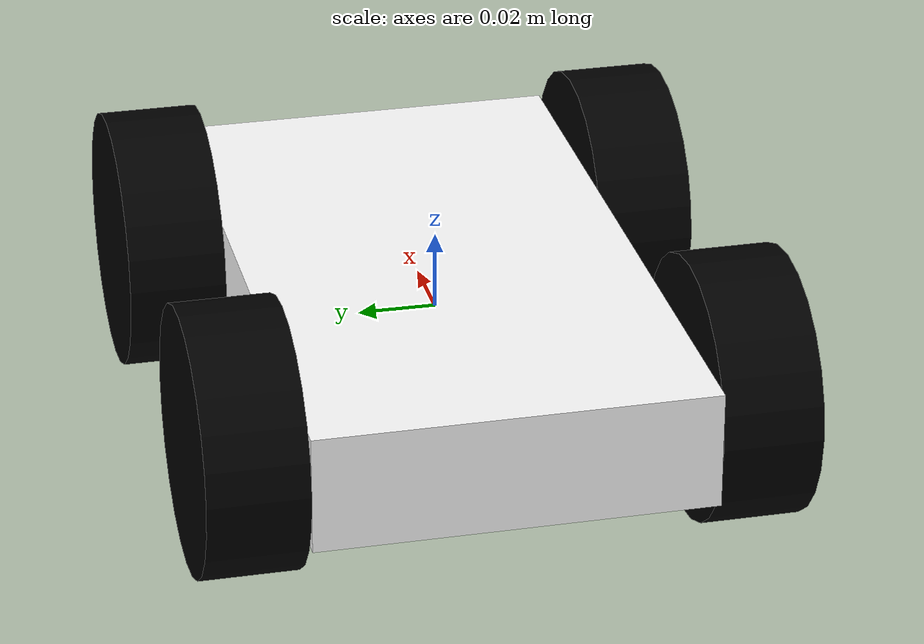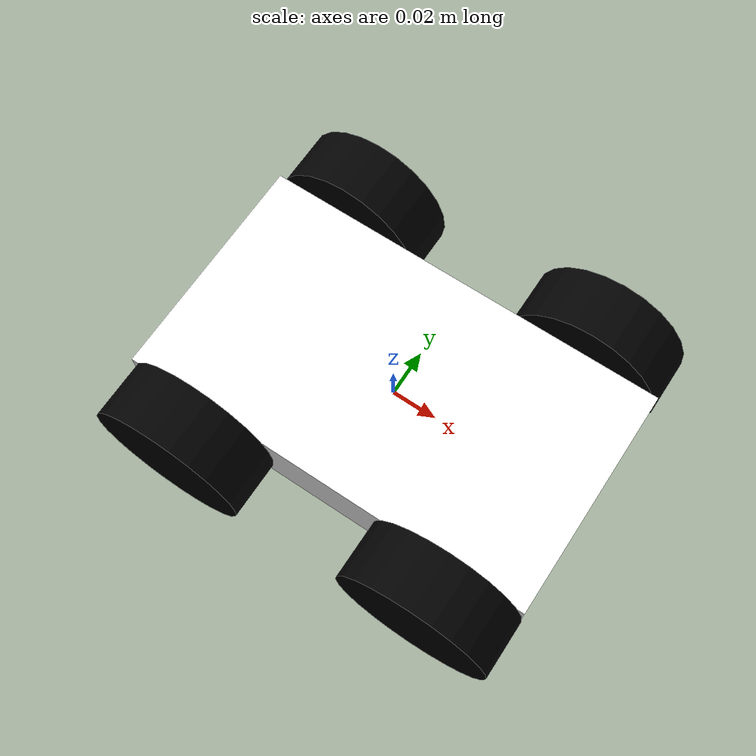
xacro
<?xml version="1.0"?>
<robot xmlns:xacro="http://www.ros.org/wiki/xacro">

    <xacro:include filename="inertial_macros.xacro" />
    <xacro:include filename="omegabot_body.xacro" />
    <xacro:include filename="omegabot_wheel.xacro" />

    <link name="base_link" />

    <joint name="body_joint" type="fixed">
        <parent link="base_link" />
        <child link="body" />
        <origin xyz="0 0 0" />
    </joint>

    <xacro:omegabot_body name="body" />

    <joint name="front_left_wheel_joint" type="continuous">
        <parent link="base_link" />
        <child link="front_left_wheel" />
        <origin xyz="0.057 0.05 0" rpy="-${pi/2} 0 0" />
        <axis xyz="0 0 1" />
    </joint>

    <xacro:omegabot_wheel name="front_left_wheel" />

    <joint name="front_right_wheel_joint" type="continuous">
        <parent link="base_link" />
        <child link="front_right_wheel" />
        <origin xyz="0.057 -0.05 0" rpy="${pi/2} 0 0" />
        <axis xyz="0 0 -1" />
    </joint>

    <xacro:omegabot_wheel name="front_right_wheel" />

    <joint name="rear_left_wheel_joint" type="continuous">
        <parent link="base_link" />
        <child link="rear_left_wheel" />
        <origin xyz="-0.057 0.05 0" rpy="-${pi/2} 0 0" />
        <axis xyz="0 0 1" />
    </joint>

    <xacro:omegabot_wheel name="rear_left_wheel" />

    <joint name="rear_right_wheel_joint" type="continuous">
        <parent link="base_link" />
        <child link="rear_right_wheel" />
        <origin xyz="-0.057 -0.05 0" rpy="${pi/2} 0 0" />
        <axis xyz="0 0 -1" />
    </joint>

    <xacro:omegabot_wheel name="rear_right_wheel" />

</robot>

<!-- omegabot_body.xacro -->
<robot xmlns:xacro="http://www.ros.org/wiki/xacro">

    <material name="white">
        <color rgba="1 1 1 1" />
    </material>

    <xacro:macro name="omegabot_body" params="name">
        <link name="${name}">
            <visual>
                <geometry>
                    <box size="0.18 0.10 0.03" />
                </geometry>
                <material name="white" />
            </visual>
            <collision>
                <geometry>
                    <box size="0.18 0.10 0.03" />
                </geometry>
            </collision>
            <xacro:inertial_box mass="0.5" x="0.18" y="0.10" z="0.03">
                <origin xyz="0 0 0" rpy="0 0 0" />
            </xacro:inertial_box>
        </link>

        <gazebo reference="${name}">
            <material>Gazebo/White</material>
        </gazebo>
    </xacro:macro>

</robot>

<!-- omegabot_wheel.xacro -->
<robot xmlns:xacro="http://www.ros.org/wiki/xacro">

    <material name="black">
        <color rgba="0 0 0 1" />
    </material>

    <xacro:macro name="omegabot_wheel" params="name">
        <link name="${name}">
            <visual>
                <origin xyz="0 0 0.0125" />
                <geometry>
                    <cylinder radius="0.0335" length="0.025" />
                </geometry>
                <material name="black" />
            </visual>
            <collision>
                <origin xyz="0 0 0.0125" />
                <geometry>
                    <cylinder radius="0.0335" length="0.025" />
                </geometry>
            </collision>
            <xacro:inertial_cylinder mass="0.01" length="0.025" radius="0.0335">
                <origin xyz="0 0 0.0125" rpy="0 0 0" />
            </xacro:inertial_cylinder>
        </link>

        <gazebo reference="${name}">
            <material>Gazebo/Black</material>
            <mu1>1.0</mu1>
            <mu2>0.9</mu2>
            <minDepth>0.001</minDepth>
            <maxVel>1.0</maxVel>
            <fdir1 expressed_in="omegabot_control/base_link">1 0 0</fdir1>
        </gazebo>
    </xacro:macro>

</robot>
